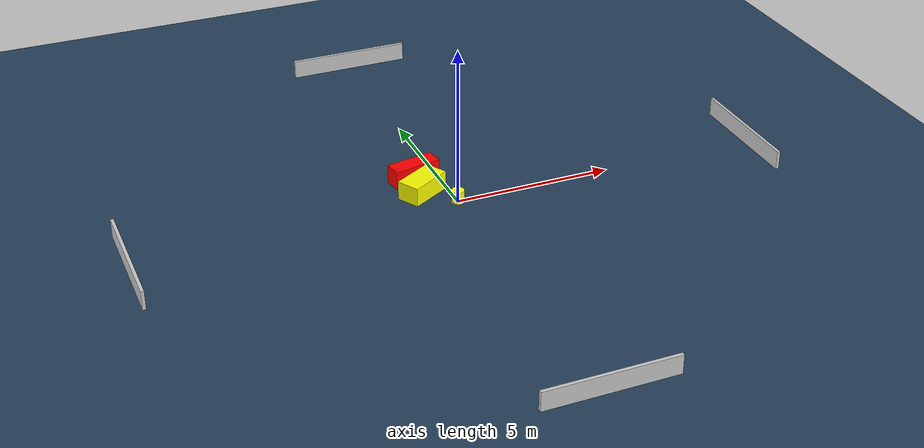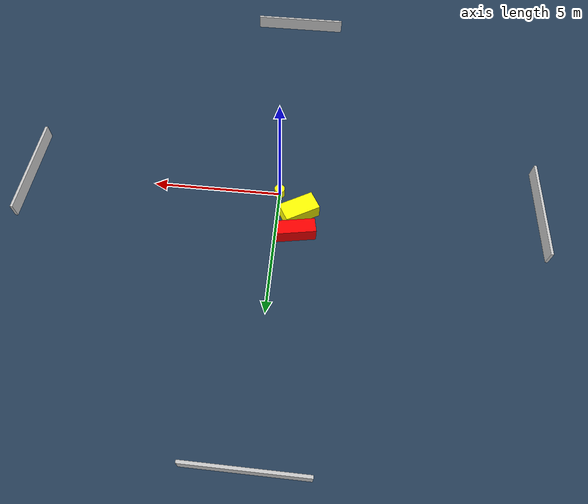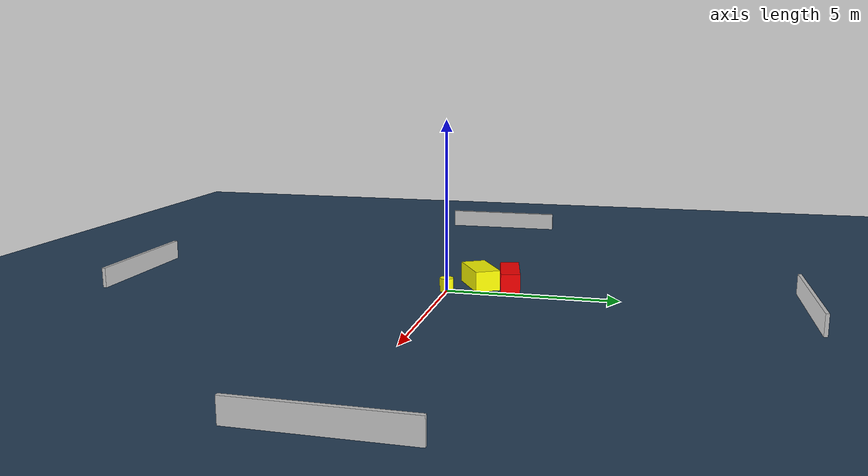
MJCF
<?xml version="1.0" ?>
<mujoco model="generated_environment">
  <option timestep="0.01" integrator="RK4" cone="elliptic"/>
  <default>
    <geom density="1"/>
  </default>
  <asset>
    <texture builtin="gradient" height="3072" name="skybox" rgb1="0.3 0.5 0.7" rgb2="0 0 0" type="skybox" width="512"/>
    <texture builtin="checker" height="300" name="groundplane" rgb1="0.2 0.3 0.4" rgb2="0.1 0.2 0.3" type="2d" width="300"/>
    <material name="groundplane" reflectance="0.2" texrepeat="5 5" texture="groundplane"/>
  </asset>
  <worldbody>
    <light dir="0 0 -1" directional="true" pos="0 0 1.5"/>
    <geom condim="3" friction="0.5 0.005 0.001" material="groundplane" name="floor" pos="0 0 0" size="0 0 0.05" type="plane"/>
    <body name="walls">
      <geom name="wall_1" condim="4" pos="-10.0 0.0 0.3" rgba="0.800000011920929 0.800000011920929 0.800000011920929 1.0" size="0.05 2.0 0.3" type="box"/>
      <geom name="wall_2" condim="4" pos="10.0 0.0 0.3" rgba="0.800000011920929 0.800000011920929 0.800000011920929 1.0" size="0.05 2.0 0.3" type="box"/>
      <geom name="wall_3" condim="4" pos="0.0 -10.0 0.3" rgba="0.800000011920929 0.800000011920929 0.800000011920929 1.0" size="2.0 0.05 0.3" type="box"/>
      <geom name="wall_4" condim="4" pos="0.0 10.0 0.3" rgba="0.800000011920929 0.800000011920929 0.800000011920929 1.0" size="2.0 0.05 0.3" type="box"/>
    </body>
    <body name="robot">
      <joint name="joint_x" type="slide" pos="0 0 0" axis="1 0 0"/>
      <joint name="joint_y" type="slide" pos="0 0 0" axis="0 1 0"/>
      <geom name="robot" type="cylinder" pos="0.0 0.0 0.2" size="0.2 0.2 0.0" mass="5.0" friction="1.0 0.005 0.0001" condim="4" rgba="1.0 1.0 0.0 1.0"/>
    </body>
    <body name="obstacle_1_movable">
      <geom name="obstacle_1_movable" condim="4" pos="-0.8256678902057493 0.8500896181050225 0.3" euler="0 0 299.86886336279144" friction="0.0 0.005 0.001" rgba="1.0 1.0 0.0 1.0" size="0.3719499298277701 0.6887701170051097 0.3" type="box" mass="0.1"/>
      <joint type="free"/>
    </body>
    <body name="obstacle_2_static">
      <geom name="obstacle_2_static" condim="4" pos="-0.7498409500826536 1.7573717619953808 0.3" euler="0 0 190.32617291548243" friction="0.0 0.005 0.001" rgba="1.0 0.0 0.0 1.0" size="0.7613484246882394 0.27995590101505435 0.3" type="box"/>
    </body>
  </worldbody>
  <actuator>
    <motor name="actuator_x" joint="joint_x" gear="1" ctrlrange="-1 1"/>
    <motor name="actuator_y" joint="joint_y" gear="1" ctrlrange="-1 1"/>
  </actuator>
</mujoco>
